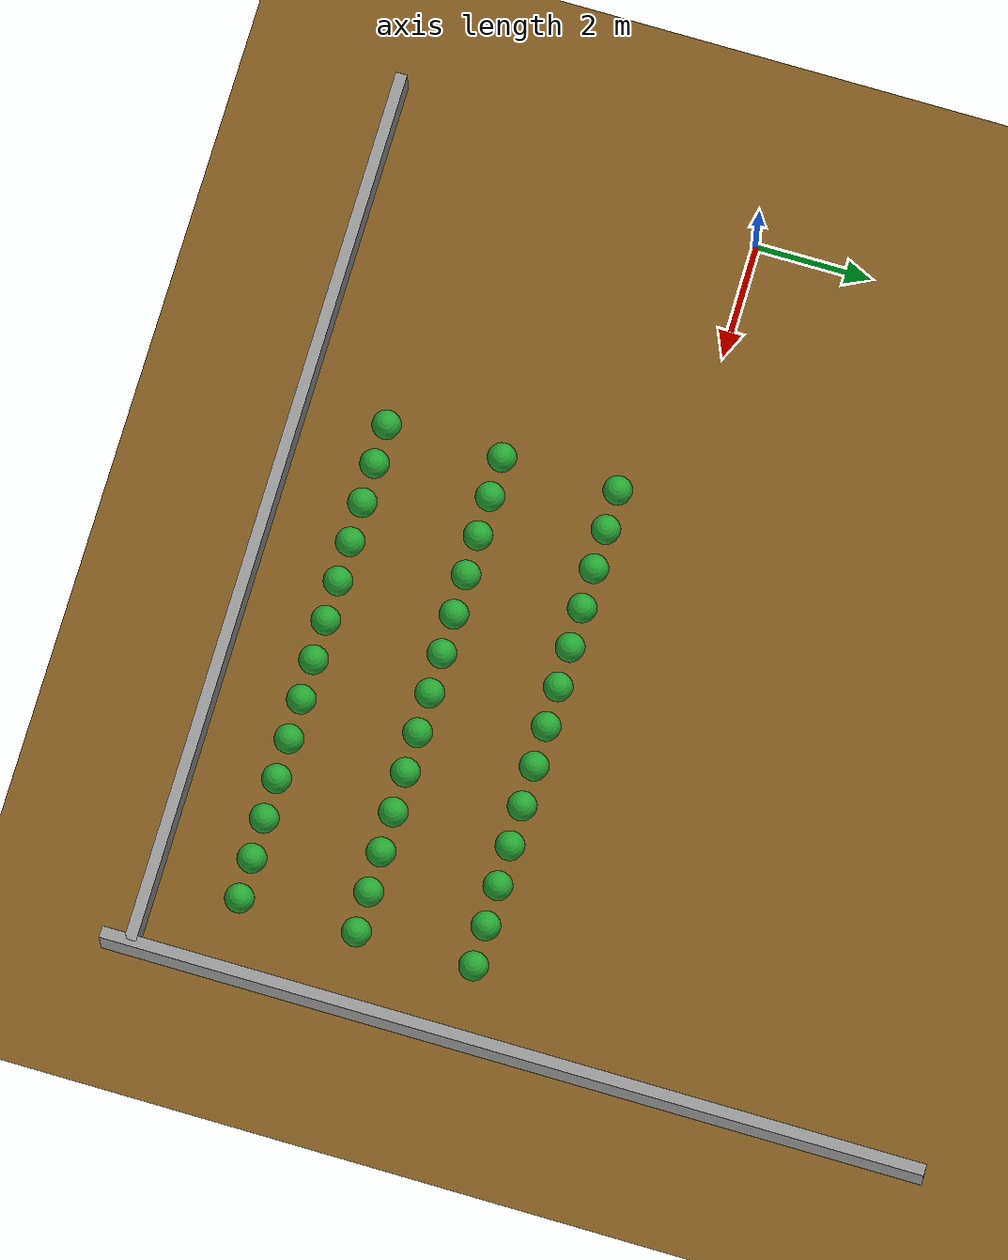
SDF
<sdf version="1.7">
 <world name="crop_field">
  <model name="ground_plane">
   <static>1</static>
   <link name="link">
    <collision name="collision">
     <geometry><plane><normal>0 0 1</normal><size>100 100</size></plane></geometry>
     <surface><friction><ode><mu>100</mu><mu2>50</mu2></ode></friction></surface>
    </collision>
    <visual name="visual">
     <cast_shadows>0</cast_shadows>
     <geometry><plane><normal>0 0 1</normal><size>100 100</size></plane></geometry>
     <material><ambient>0.45 0.30 0.10 1</ambient><diffuse>0.50 0.35 0.12 1</diffuse></material>
    </visual>
   </link>
  </model>
  <model name="row1_plant_07">
   <static>1</static>
   <link name="link">
    <collision name="c">
     <geometry><cylinder><radius>0.05</radius><length>0.8</length></cylinder></geometry>
    </collision>
    <visual name="stem">
     <pose>0 0 -0.125 0 0 0</pose>
     <geometry><cylinder><radius>0.03</radius><length>0.55</length></cylinder></geometry>
     <material>
      <script><uri>file://media/materials/scripts/gazebo.material</uri><name>Gazebo/Green</name></script>
     </material>
    </visual>
    <visual name="canopy">
     <pose>0 0 0.275 0 0 0</pose>
     <geometry><sphere><radius>0.25</radius></sphere></geometry>
     <material>
      <script><uri>file://media/materials/scripts/gazebo.material</uri><name>Gazebo/Green</name></script>
     </material>
    </visual>
   </link>
   <pose>4.9 -5.0 0.4 0 0 0</pose>
  </model>
  <model name="row1_plant_08">
   <static>1</static>
   <link name="link">
    <collision name="c">
     <geometry><cylinder><radius>0.05</radius><length>0.8</length></cylinder></geometry>
    </collision>
    <visual name="stem">
     <pose>0 0 -0.125 0 0 0</pose>
     <geometry><cylinder><radius>0.03</radius><length>0.55</length></cylinder></geometry>
     <material>
      <script><uri>file://media/materials/scripts/gazebo.material</uri><name>Gazebo/Green</name></script>
     </material>
    </visual>
    <visual name="canopy">
     <pose>0 0 0.275 0 0 0</pose>
     <geometry><sphere><radius>0.25</radius></sphere></geometry>
     <material>
      <script><uri>file://media/materials/scripts/gazebo.material</uri><name>Gazebo/Green</name></script>
     </material>
    </visual>
   </link>
   <pose>5.6 -5.0 0.4 0 0 0</pose>
  </model>
  <model name="row1_plant_09">
   <static>1</static>
   <link name="link">
    <collision name="c">
     <geometry><cylinder><radius>0.05</radius><length>0.8</length></cylinder></geometry>
    </collision>
    <visual name="stem">
     <pose>0 0 -0.125 0 0 0</pose>
     <geometry><cylinder><radius>0.03</radius><length>0.55</length></cylinder></geometry>
     <material>
      <script><uri>file://media/materials/scripts/gazebo.material</uri><name>Gazebo/Green</name></script>
     </material>
    </visual>
    <visual name="canopy">
     <pose>0 0 0.275 0 0 0</pose>
     <geometry><sphere><radius>0.25</radius></sphere></geometry>
     <material>
      <script><uri>file://media/materials/scripts/gazebo.material</uri><name>Gazebo/Green</name></script>
     </material>
    </visual>
   </link>
   <pose>6.3 -5.0 0.4 0 0 0</pose>
  </model>
  <model name="row1_plant_10">
   <static>1</static>
   <link name="link">
    <collision name="c">
     <geometry><cylinder><radius>0.05</radius><length>0.8</length></cylinder></geometry>
    </collision>
    <visual name="stem">
     <pose>0 0 -0.125 0 0 0</pose>
     <geometry><cylinder><radius>0.03</radius><length>0.55</length></cylinder></geometry>
     <material>
      <script><uri>file://media/materials/scripts/gazebo.material</uri><name>Gazebo/Green</name></script>
     </material>
    </visual>
    <visual name="canopy">
     <pose>0 0 0.275 0 0 0</pose>
     <geometry><sphere><radius>0.25</radius></sphere></geometry>
     <material>
      <script><uri>file://media/materials/scripts/gazebo.material</uri><name>Gazebo/Green</name></script>
     </material>
    </visual>
   </link>
   <pose>7.0 -5.0 0.4 0 0 0</pose>
  </model>
  <model name="row1_plant_11">
   <static>1</static>
   <link name="link">
    <collision name="c">
     <geometry><cylinder><radius>0.05</radius><length>0.8</length></cylinder></geometry>
    </collision>
    <visual name="stem">
     <pose>0 0 -0.125 0 0 0</pose>
     <geometry><cylinder><radius>0.03</radius><length>0.55</length></cylinder></geometry>
     <material>
      <script><uri>file://media/materials/scripts/gazebo.material</uri><name>Gazebo/Green</name></script>
     </material>
    </visual>
    <visual name="canopy">
     <pose>0 0 0.275 0 0 0</pose>
     <geometry><sphere><radius>0.25</radius></sphere></geometry>
     <material>
      <script><uri>file://media/materials/scripts/gazebo.material</uri><name>Gazebo/Green</name></script>
     </material>
    </visual>
   </link>
   <pose>7.7 -5.0 0.4 0 0 0</pose>
  </model>
  <model name="row1_plant_12">
   <static>1</static>
   <link name="link">
    <collision name="c">
     <geometry><cylinder><radius>0.05</radius><length>0.8</length></cylinder></geometry>
    </collision>
    <visual name="stem">
     <pose>0 0 -0.125 0 0 0</pose>
     <geometry><cylinder><radius>0.03</radius><length>0.55</length></cylinder></geometry>
     <material>
      <script><uri>file://media/materials/scripts/gazebo.material</uri><name>Gazebo/Green</name></script>
     </material>
    </visual>
    <visual name="canopy">
     <pose>0 0 0.275 0 0 0</pose>
     <geometry><sphere><radius>0.25</radius></sphere></geometry>
     <material>
      <script><uri>file://media/materials/scripts/gazebo.material</uri><name>Gazebo/Green</name></script>
     </material>
    </visual>
   </link>
   <pose>8.4 -5.0 0.4 0 0 0</pose>
  </model>
  <model name="row1_plant_13">
   <static>1</static>
   <link name="link">
    <collision name="c">
     <geometry><cylinder><radius>0.05</radius><length>0.8</length></cylinder></geometry>
    </collision>
    <visual name="stem">
     <pose>0 0 -0.125 0 0 0</pose>
     <geometry><cylinder><radius>0.03</radius><length>0.55</length></cylinder></geometry>
     <material>
      <script><uri>file://media/materials/scripts/gazebo.material</uri><name>Gazebo/Green</name></script>
     </material>
    </visual>
    <visual name="canopy">
     <pose>0 0 0.275 0 0 0</pose>
     <geometry><sphere><radius>0.25</radius></sphere></geometry>
     <material>
      <script><uri>file://media/materials/scripts/gazebo.material</uri><name>Gazebo/Green</name></script>
     </material>
    </visual>
   </link>
   <pose>9.1 -5.0 0.4 0 0 0</pose>
  </model>
  <model name="row1_plant_14">
   <static>1</static>
   <link name="link">
    <collision name="c">
     <geometry><cylinder><radius>0.05</radius><length>0.8</length></cylinder></geometry>
    </collision>
    <visual name="stem">
     <pose>0 0 -0.125 0 0 0</pose>
     <geometry><cylinder><radius>0.03</radius><length>0.55</length></cylinder></geometry>
     <material>
      <script><uri>file://media/materials/scripts/gazebo.material</uri><name>Gazebo/Green</name></script>
     </material>
    </visual>
    <visual name="canopy">
     <pose>0 0 0.275 0 0 0</pose>
     <geometry><sphere><radius>0.25</radius></sphere></geometry>
     <material>
      <script><uri>file://media/materials/scripts/gazebo.material</uri><name>Gazebo/Green</name></script>
     </material>
    </visual>
   </link>
   <pose>9.8 -5.0 0.4 0 0 0</pose>
  </model>
  <model name="row1_plant_15">
   <static>1</static>
   <link name="link">
    <collision name="c">
     <geometry><cylinder><radius>0.05</radius><length>0.8</length></cylinder></geometry>
    </collision>
    <visual name="stem">
     <pose>0 0 -0.125 0 0 0</pose>
     <geometry><cylinder><radius>0.03</radius><length>0.55</length></cylinder></geometry>
     <material>
      <script><uri>file://media/materials/scripts/gazebo.material</uri><name>Gazebo/Green</name></script>
     </material>
    </visual>
    <visual name="canopy">
     <pose>0 0 0.275 0 0 0</pose>
     <geometry><sphere><radius>0.25</radius></sphere></geometry>
     <material>
      <script><uri>file://media/materials/scripts/gazebo.material</uri><name>Gazebo/Green</name></script>
     </material>
    </visual>
   </link>
   <pose>10.5 -5.0 0.4 0 0 0</pose>
  </model>
  <model name="row1_plant_16">
   <static>1</static>
   <link name="link">
    <collision name="c">
     <geometry><cylinder><radius>0.05</radius><length>0.8</length></cylinder></geometry>
    </collision>
    <visual name="stem">
     <pose>0 0 -0.125 0 0 0</pose>
     <geometry><cylinder><radius>0.03</radius><length>0.55</length></cylinder></geometry>
     <material>
      <script><uri>file://media/materials/scripts/gazebo.material</uri><name>Gazebo/Green</name></script>
     </material>
    </visual>
    <visual name="canopy">
     <pose>0 0 0.275 0 0 0</pose>
     <geometry><sphere><radius>0.25</radius></sphere></geometry>
     <material>
      <script><uri>file://media/materials/scripts/gazebo.material</uri><name>Gazebo/Green</name></script>
     </material>
    </visual>
   </link>
   <pose>11.2 -5.0 0.4 0 0 0</pose>
  </model>
  <model name="row1_plant_17">
   <static>1</static>
   <link name="link">
    <collision name="c">
     <geometry><cylinder><radius>0.05</radius><length>0.8</length></cylinder></geometry>
    </collision>
    <visual name="stem">
     <pose>0 0 -0.125 0 0 0</pose>
     <geometry><cylinder><radius>0.03</radius><length>0.55</length></cylinder></geometry>
     <material>
      <script><uri>file://media/materials/scripts/gazebo.material</uri><name>Gazebo/Green</name></script>
     </material>
    </visual>
    <visual name="canopy">
     <pose>0 0 0.275 0 0 0</pose>
     <geometry><sphere><radius>0.25</radius></sphere></geometry>
     <material>
      <script><uri>file://media/materials/scripts/gazebo.material</uri><name>Gazebo/Green</name></script>
     </material>
    </visual>
   </link>
   <pose>11.9 -5.0 0.4 0 0 0</pose>
  </model>
  <model name="row1_plant_18">
   <static>1</static>
   <link name="link">
    <collision name="c">
     <geometry><cylinder><radius>0.05</radius><length>0.8</length></cylinder></geometry>
    </collision>
    <visual name="stem">
     <pose>0 0 -0.125 0 0 0</pose>
     <geometry><cylinder><radius>0.03</radius><length>0.55</length></cylinder></geometry>
     <material>
      <script><uri>file://media/materials/scripts/gazebo.material</uri><name>Gazebo/Green</name></script>
     </material>
    </visual>
    <visual name="canopy">
     <pose>0 0 0.275 0 0 0</pose>
     <geometry><sphere><radius>0.25</radius></sphere></geometry>
     <material>
      <script><uri>file://media/materials/scripts/gazebo.material</uri><name>Gazebo/Green</name></script>
     </material>
    </visual>
   </link>
   <pose>12.6 -5.0 0.4 0 0 0</pose>
  </model>
  <model name="row1_plant_19">
   <static>1</static>
   <link name="link">
    <collision name="c">
     <geometry><cylinder><radius>0.05</radius><length>0.8</length></cylinder></geometry>
    </collision>
    <visual name="stem">
     <pose>0 0 -0.125 0 0 0</pose>
     <geometry><cylinder><radius>0.03</radius><length>0.55</length></cylinder></geometry>
     <material>
      <script><uri>file://media/materials/scripts/gazebo.material</uri><name>Gazebo/Green</name></script>
     </material>
    </visual>
    <visual name="canopy">
     <pose>0 0 0.275 0 0 0</pose>
     <geometry><sphere><radius>0.25</radius></sphere></geometry>
     <material>
      <script><uri>file://media/materials/scripts/gazebo.material</uri><name>Gazebo/Green</name></script>
     </material>
    </visual>
   </link>
   <pose>13.3 -5.0 0.4 0 0 0</pose>
  </model>
  <model name="row2_plant_07">
   <static>1</static>
   <link name="link">
    <collision name="c">
     <geometry><cylinder><radius>0.05</radius><length>0.8</length></cylinder></geometry>
    </collision>
    <visual name="stem">
     <pose>0 0 -0.125 0 0 0</pose>
     <geometry><cylinder><radius>0.03</radius><length>0.55</length></cylinder></geometry>
     <material>
      <script><uri>file://media/materials/scripts/gazebo.material</uri><name>Gazebo/Green</name></script>
     </material>
    </visual>
    <visual name="canopy">
     <pose>0 0 0.275 0 0 0</pose>
     <geometry><sphere><radius>0.25</radius></sphere></geometry>
     <material>
      <script><uri>file://media/materials/scripts/gazebo.material</uri><name>Gazebo/Green</name></script>
     </material>
    </visual>
   </link>
   <pose>4.9 -3.0 0.4 0 0 0</pose>
  </model>
  <model name="row2_plant_08">
   <static>1</static>
   <link name="link">
    <collision name="c">
     <geometry><cylinder><radius>0.05</radius><length>0.8</length></cylinder></geometry>
    </collision>
    <visual name="stem">
     <pose>0 0 -0.125 0 0 0</pose>
     <geometry><cylinder><radius>0.03</radius><length>0.55</length></cylinder></geometry>
     <material>
      <script><uri>file://media/materials/scripts/gazebo.material</uri><name>Gazebo/Green</name></script>
     </material>
    </visual>
    <visual name="canopy">
     <pose>0 0 0.275 0 0 0</pose>
     <geometry><sphere><radius>0.25</radius></sphere></geometry>
     <material>
      <script><uri>file://media/materials/scripts/gazebo.material</uri><name>Gazebo/Green</name></script>
     </material>
    </visual>
   </link>
   <pose>5.6 -3.0 0.4 0 0 0</pose>
  </model>
  <model name="row2_plant_09">
   <static>1</static>
   <link name="link">
    <collision name="c">
     <geometry><cylinder><radius>0.05</radius><length>0.8</length></cylinder></geometry>
    </collision>
    <visual name="stem">
     <pose>0 0 -0.125 0 0 0</pose>
     <geometry><cylinder><radius>0.03</radius><length>0.55</length></cylinder></geometry>
     <material>
      <script><uri>file://media/materials/scripts/gazebo.material</uri><name>Gazebo/Green</name></script>
     </material>
    </visual>
    <visual name="canopy">
     <pose>0 0 0.275 0 0 0</pose>
     <geometry><sphere><radius>0.25</radius></sphere></geometry>
     <material>
      <script><uri>file://media/materials/scripts/gazebo.material</uri><name>Gazebo/Green</name></script>
     </material>
    </visual>
   </link>
   <pose>6.3 -3.0 0.4 0 0 0</pose>
  </model>
  <model name="row2_plant_10">
   <static>1</static>
   <link name="link">
    <collision name="c">
     <geometry><cylinder><radius>0.05</radius><length>0.8</length></cylinder></geometry>
    </collision>
    <visual name="stem">
     <pose>0 0 -0.125 0 0 0</pose>
     <geometry><cylinder><radius>0.03</radius><length>0.55</length></cylinder></geometry>
     <material>
      <script><uri>file://media/materials/scripts/gazebo.material</uri><name>Gazebo/Green</name></script>
     </material>
    </visual>
    <visual name="canopy">
     <pose>0 0 0.275 0 0 0</pose>
     <geometry><sphere><radius>0.25</radius></sphere></geometry>
     <material>
      <script><uri>file://media/materials/scripts/gazebo.material</uri><name>Gazebo/Green</name></script>
     </material>
    </visual>
   </link>
   <pose>7.0 -3.0 0.4 0 0 0</pose>
  </model>
  <model name="row2_plant_11">
   <static>1</static>
   <link name="link">
    <collision name="c">
     <geometry><cylinder><radius>0.05</radius><length>0.8</length></cylinder></geometry>
    </collision>
    <visual name="stem">
     <pose>0 0 -0.125 0 0 0</pose>
     <geometry><cylinder><radius>0.03</radius><length>0.55</length></cylinder></geometry>
     <material>
      <script><uri>file://media/materials/scripts/gazebo.material</uri><name>Gazebo/Green</name></script>
     </material>
    </visual>
    <visual name="canopy">
     <pose>0 0 0.275 0 0 0</pose>
     <geometry><sphere><radius>0.25</radius></sphere></geometry>
     <material>
      <script><uri>file://media/materials/scripts/gazebo.material</uri><name>Gazebo/Green</name></script>
     </material>
    </visual>
   </link>
   <pose>7.7 -3.0 0.4 0 0 0</pose>
  </model>
  <model name="row2_plant_12">
   <static>1</static>
   <link name="link">
    <collision name="c">
     <geometry><cylinder><radius>0.05</radius><length>0.8</length></cylinder></geometry>
    </collision>
    <visual name="stem">
     <pose>0 0 -0.125 0 0 0</pose>
     <geometry><cylinder><radius>0.03</radius><length>0.55</length></cylinder></geometry>
     <material>
      <script><uri>file://media/materials/scripts/gazebo.material</uri><name>Gazebo/Green</name></script>
     </material>
    </visual>
    <visual name="canopy">
     <pose>0 0 0.275 0 0 0</pose>
     <geometry><sphere><radius>0.25</radius></sphere></geometry>
     <material>
      <script><uri>file://media/materials/scripts/gazebo.material</uri><name>Gazebo/Green</name></script>
     </material>
    </visual>
   </link>
   <pose>8.4 -3.0 0.4 0 0 0</pose>
  </model>
  <model name="row2_plant_13">
   <static>1</static>
   <link name="link">
    <collision name="c">
     <geometry><cylinder><radius>0.05</radius><length>0.8</length></cylinder></geometry>
    </collision>
    <visual name="stem">
     <pose>0 0 -0.125 0 0 0</pose>
     <geometry><cylinder><radius>0.03</radius><length>0.55</length></cylinder></geometry>
     <material>
      <script><uri>file://media/materials/scripts/gazebo.material</uri><name>Gazebo/Green</name></script>
     </material>
    </visual>
    <visual name="canopy">
     <pose>0 0 0.275 0 0 0</pose>
     <geometry><sphere><radius>0.25</radius></sphere></geometry>
     <material>
      <script><uri>file://media/materials/scripts/gazebo.material</uri><name>Gazebo/Green</name></script>
     </material>
    </visual>
   </link>
   <pose>9.1 -3.0 0.4 0 0 0</pose>
  </model>
  <model name="row2_plant_14">
   <static>1</static>
   <link name="link">
    <collision name="c">
     <geometry><cylinder><radius>0.05</radius><length>0.8</length></cylinder></geometry>
    </collision>
    <visual name="stem">
     <pose>0 0 -0.125 0 0 0</pose>
     <geometry><cylinder><radius>0.03</radius><length>0.55</length></cylinder></geometry>
     <material>
      <script><uri>file://media/materials/scripts/gazebo.material</uri><name>Gazebo/Green</name></script>
     </material>
    </visual>
    <visual name="canopy">
     <pose>0 0 0.275 0 0 0</pose>
     <geometry><sphere><radius>0.25</radius></sphere></geometry>
     <material>
      <script><uri>file://media/materials/scripts/gazebo.material</uri><name>Gazebo/Green</name></script>
     </material>
    </visual>
   </link>
   <pose>9.8 -3.0 0.4 0 0 0</pose>
  </model>
  <model name="row2_plant_15">
   <static>1</static>
   <link name="link">
    <collision name="c">
     <geometry><cylinder><radius>0.05</radius><length>0.8</length></cylinder></geometry>
    </collision>
    <visual name="stem">
     <pose>0 0 -0.125 0 0 0</pose>
     <geometry><cylinder><radius>0.03</radius><length>0.55</length></cylinder></geometry>
     <material>
      <script><uri>file://media/materials/scripts/gazebo.material</uri><name>Gazebo/Green</name></script>
     </material>
    </visual>
    <visual name="canopy">
     <pose>0 0 0.275 0 0 0</pose>
     <geometry><sphere><radius>0.25</radius></sphere></geometry>
     <material>
      <script><uri>file://media/materials/scripts/gazebo.material</uri><name>Gazebo/Green</name></script>
     </material>
    </visual>
   </link>
   <pose>10.5 -3.0 0.4 0 0 0</pose>
  </model>
  <model name="row2_plant_16">
   <static>1</static>
   <link name="link">
    <collision name="c">
     <geometry><cylinder><radius>0.05</radius><length>0.8</length></cylinder></geometry>
    </collision>
    <visual name="stem">
     <pose>0 0 -0.125 0 0 0</pose>
     <geometry><cylinder><radius>0.03</radius><length>0.55</length></cylinder></geometry>
     <material>
      <script><uri>file://media/materials/scripts/gazebo.material</uri><name>Gazebo/Green</name></script>
     </material>
    </visual>
    <visual name="canopy">
     <pose>0 0 0.275 0 0 0</pose>
     <geometry><sphere><radius>0.25</radius></sphere></geometry>
     <material>
      <script><uri>file://media/materials/scripts/gazebo.material</uri><name>Gazebo/Green</name></script>
     </material>
    </visual>
   </link>
   <pose>11.2 -3.0 0.4 0 0 0</pose>
  </model>
  <model name="row2_plant_17">
   <static>1</static>
   <link name="link">
    <collision name="c">
     <geometry><cylinder><radius>0.05</radius><length>0.8</length></cylinder></geometry>
    </collision>
    <visual name="stem">
     <pose>0 0 -0.125 0 0 0</pose>
     <geometry><cylinder><radius>0.03</radius><length>0.55</length></cylinder></geometry>
     <material>
      <script><uri>file://media/materials/scripts/gazebo.material</uri><name>Gazebo/Green</name></script>
     </material>
    </visual>
    <visual name="canopy">
     <pose>0 0 0.275 0 0 0</pose>
     <geometry><sphere><radius>0.25</radius></sphere></geometry>
     <material>
      <script><uri>file://media/materials/scripts/gazebo.material</uri><name>Gazebo/Green</name></script>
     </material>
    </visual>
   </link>
   <pose>11.9 -3.0 0.4 0 0 0</pose>
  </model>
  <model name="row2_plant_18">
   <static>1</static>
   <link name="link">
    <collision name="c">
     <geometry><cylinder><radius>0.05</radius><length>0.8</length></cylinder></geometry>
    </collision>
    <visual name="stem">
     <pose>0 0 -0.125 0 0 0</pose>
     <geometry><cylinder><radius>0.03</radius><length>0.55</length></cylinder></geometry>
     <material>
      <script><uri>file://media/materials/scripts/gazebo.material</uri><name>Gazebo/Green</name></script>
     </material>
    </visual>
    <visual name="canopy">
     <pose>0 0 0.275 0 0 0</pose>
     <geometry><sphere><radius>0.25</radius></sphere></geometry>
     <material>
      <script><uri>file://media/materials/scripts/gazebo.material</uri><name>Gazebo/Green</name></script>
     </material>
    </visual>
   </link>
   <pose>12.6 -3.0 0.4 0 0 0</pose>
  </model>
  <model name="row2_plant_19">
   <static>1</static>
   <link name="link">
    <collision name="c">
     <geometry><cylinder><radius>0.05</radius><length>0.8</length></cylinder></geometry>
    </collision>
    <visual name="stem">
     <pose>0 0 -0.125 0 0 0</pose>
     <geometry><cylinder><radius>0.03</radius><length>0.55</length></cylinder></geometry>
     <material>
      <script><uri>file://media/materials/scripts/gazebo.material</uri><name>Gazebo/Green</name></script>
     </material>
    </visual>
    <visual name="canopy">
     <pose>0 0 0.275 0 0 0</pose>
     <geometry><sphere><radius>0.25</radius></sphere></geometry>
     <material>
      <script><uri>file://media/materials/scripts/gazebo.material</uri><name>Gazebo/Green</name></script>
     </material>
    </visual>
   </link>
   <pose>13.3 -3.0 0.4 0 0 0</pose>
  </model>
  <model name="row3_plant_07">
   <static>1</static>
   <link name="link">
    <collision name="c">
     <geometry><cylinder><radius>0.05</radius><length>0.8</length></cylinder></geometry>
    </collision>
    <visual name="stem">
     <pose>0 0 -0.125 0 0 0</pose>
     <geometry><cylinder><radius>0.03</radius><length>0.55</length></cylinder></geometry>
     <material>
      <script><uri>file://media/materials/scripts/gazebo.material</uri><name>Gazebo/Green</name></script>
     </material>
    </visual>
    <visual name="canopy">
     <pose>0 0 0.275 0 0 0</pose>
     <geometry><sphere><radius>0.25</radius></sphere></geometry>
     <material>
      <script><uri>file://media/materials/scripts/gazebo.material</uri><name>Gazebo/Green</name></script>
     </material>
    </visual>
   </link>
   <pose>4.9 -1.0 0.4 0 0 0</pose>
  </model>
  <model name="row3_plant_08">
   <static>1</static>
   <link name="link">
    <collision name="c">
     <geometry><cylinder><radius>0.05</radius><length>0.8</length></cylinder></geometry>
    </collision>
    <visual name="stem">
     <pose>0 0 -0.125 0 0 0</pose>
     <geometry><cylinder><radius>0.03</radius><length>0.55</length></cylinder></geometry>
     <material>
      <script><uri>file://media/materials/scripts/gazebo.material</uri><name>Gazebo/Green</name></script>
     </material>
    </visual>
    <visual name="canopy">
     <pose>0 0 0.275 0 0 0</pose>
     <geometry><sphere><radius>0.25</radius></sphere></geometry>
     <material>
      <script><uri>file://media/materials/scripts/gazebo.material</uri><name>Gazebo/Green</name></script>
     </material>
    </visual>
   </link>
   <pose>5.6 -1.0 0.4 0 0 0</pose>
  </model>
  <model name="row3_plant_09">
   <static>1</static>
   <link name="link">
    <collision name="c">
     <geometry><cylinder><radius>0.05</radius><length>0.8</length></cylinder></geometry>
    </collision>
    <visual name="stem">
     <pose>0 0 -0.125 0 0 0</pose>
     <geometry><cylinder><radius>0.03</radius><length>0.55</length></cylinder></geometry>
     <material>
      <script><uri>file://media/materials/scripts/gazebo.material</uri><name>Gazebo/Green</name></script>
     </material>
    </visual>
    <visual name="canopy">
     <pose>0 0 0.275 0 0 0</pose>
     <geometry><sphere><radius>0.25</radius></sphere></geometry>
     <material>
      <script><uri>file://media/materials/scripts/gazebo.material</uri><name>Gazebo/Green</name></script>
     </material>
    </visual>
   </link>
   <pose>6.3 -1.0 0.4 0 0 0</pose>
  </model>
  <model name="row3_plant_10">
   <static>1</static>
   <link name="link">
    <collision name="c">
     <geometry><cylinder><radius>0.05</radius><length>0.8</length></cylinder></geometry>
    </collision>
    <visual name="stem">
     <pose>0 0 -0.125 0 0 0</pose>
     <geometry><cylinder><radius>0.03</radius><length>0.55</length></cylinder></geometry>
     <material>
      <script><uri>file://media/materials/scripts/gazebo.material</uri><name>Gazebo/Green</name></script>
     </material>
    </visual>
    <visual name="canopy">
     <pose>0 0 0.275 0 0 0</pose>
     <geometry><sphere><radius>0.25</radius></sphere></geometry>
     <material>
      <script><uri>file://media/materials/scripts/gazebo.material</uri><name>Gazebo/Green</name></script>
     </material>
    </visual>
   </link>
   <pose>7.0 -1.0 0.4 0 0 0</pose>
  </model>
  <model name="row3_plant_11">
   <static>1</static>
   <link name="link">
    <collision name="c">
     <geometry><cylinder><radius>0.05</radius><length>0.8</length></cylinder></geometry>
    </collision>
    <visual name="stem">
     <pose>0 0 -0.125 0 0 0</pose>
     <geometry><cylinder><radius>0.03</radius><length>0.55</length></cylinder></geometry>
     <material>
      <script><uri>file://media/materials/scripts/gazebo.material</uri><name>Gazebo/Green</name></script>
     </material>
    </visual>
    <visual name="canopy">
     <pose>0 0 0.275 0 0 0</pose>
     <geometry><sphere><radius>0.25</radius></sphere></geometry>
     <material>
      <script><uri>file://media/materials/scripts/gazebo.material</uri><name>Gazebo/Green</name></script>
     </material>
    </visual>
   </link>
   <pose>7.7 -1.0 0.4 0 0 0</pose>
  </model>
  <model name="row3_plant_12">
   <static>1</static>
   <link name="link">
    <collision name="c">
     <geometry><cylinder><radius>0.05</radius><length>0.8</length></cylinder></geometry>
    </collision>
    <visual name="stem">
     <pose>0 0 -0.125 0 0 0</pose>
     <geometry><cylinder><radius>0.03</radius><length>0.55</length></cylinder></geometry>
     <material>
      <script><uri>file://media/materials/scripts/gazebo.material</uri><name>Gazebo/Green</name></script>
     </material>
    </visual>
    <visual name="canopy">
     <pose>0 0 0.275 0 0 0</pose>
     <geometry><sphere><radius>0.25</radius></sphere></geometry>
     <material>
      <script><uri>file://media/materials/scripts/gazebo.material</uri><name>Gazebo/Green</name></script>
     </material>
    </visual>
   </link>
   <pose>8.4 -1.0 0.4 0 0 0</pose>
  </model>
  <model name="row3_plant_13">
   <static>1</static>
   <link name="link">
    <collision name="c">
     <geometry><cylinder><radius>0.05</radius><length>0.8</length></cylinder></geometry>
    </collision>
    <visual name="stem">
     <pose>0 0 -0.125 0 0 0</pose>
     <geometry><cylinder><radius>0.03</radius><length>0.55</length></cylinder></geometry>
     <material>
      <script><uri>file://media/materials/scripts/gazebo.material</uri><name>Gazebo/Green</name></script>
     </material>
    </visual>
    <visual name="canopy">
     <pose>0 0 0.275 0 0 0</pose>
     <geometry><sphere><radius>0.25</radius></sphere></geometry>
     <material>
      <script><uri>file://media/materials/scripts/gazebo.material</uri><name>Gazebo/Green</name></script>
     </material>
    </visual>
   </link>
   <pose>9.1 -1.0 0.4 0 0 0</pose>
  </model>
  <model name="row3_plant_14">
   <static>1</static>
   <link name="link">
    <collision name="c">
     <geometry><cylinder><radius>0.05</radius><length>0.8</length></cylinder></geometry>
    </collision>
    <visual name="stem">
     <pose>0 0 -0.125 0 0 0</pose>
     <geometry><cylinder><radius>0.03</radius><length>0.55</length></cylinder></geometry>
     <material>
      <script><uri>file://media/materials/scripts/gazebo.material</uri><name>Gazebo/Green</name></script>
     </material>
    </visual>
    <visual name="canopy">
     <pose>0 0 0.275 0 0 0</pose>
     <geometry><sphere><radius>0.25</radius></sphere></geometry>
     <material>
      <script><uri>file://media/materials/scripts/gazebo.material</uri><name>Gazebo/Green</name></script>
     </material>
    </visual>
   </link>
   <pose>9.8 -1.0 0.4 0 0 0</pose>
  </model>
  <model name="row3_plant_15">
   <static>1</static>
   <link name="link">
    <collision name="c">
     <geometry><cylinder><radius>0.05</radius><length>0.8</length></cylinder></geometry>
    </collision>
    <visual name="stem">
     <pose>0 0 -0.125 0 0 0</pose>
     <geometry><cylinder><radius>0.03</radius><length>0.55</length></cylinder></geometry>
     <material>
      <script><uri>file://media/materials/scripts/gazebo.material</uri><name>Gazebo/Green</name></script>
     </material>
    </visual>
    <visual name="canopy">
     <pose>0 0 0.275 0 0 0</pose>
     <geometry><sphere><radius>0.25</radius></sphere></geometry>
     <material>
      <script><uri>file://media/materials/scripts/gazebo.material</uri><name>Gazebo/Green</name></script>
     </material>
    </visual>
   </link>
   <pose>10.5 -1.0 0.4 0 0 0</pose>
  </model>
  <model name="row3_plant_16">
   <static>1</static>
   <link name="link">
    <collision name="c">
     <geometry><cylinder><radius>0.05</radius><length>0.8</length></cylinder></geometry>
    </collision>
    <visual name="stem">
     <pose>0 0 -0.125 0 0 0</pose>
     <geometry><cylinder><radius>0.03</radius><length>0.55</length></cylinder></geometry>
     <material>
      <script><uri>file://media/materials/scripts/gazebo.material</uri><name>Gazebo/Green</name></script>
     </material>
    </visual>
    <visual name="canopy">
     <pose>0 0 0.275 0 0 0</pose>
     <geometry><sphere><radius>0.25</radius></sphere></geometry>
     <material>
      <script><uri>file://media/materials/scripts/gazebo.material</uri><name>Gazebo/Green</name></script>
     </material>
    </visual>
   </link>
   <pose>11.2 -1.0 0.4 0 0 0</pose>
  </model>
  <model name="row3_plant_17">
   <static>1</static>
   <link name="link">
    <collision name="c">
     <geometry><cylinder><radius>0.05</radius><length>0.8</length></cylinder></geometry>
    </collision>
    <visual name="stem">
     <pose>0 0 -0.125 0 0 0</pose>
     <geometry><cylinder><radius>0.03</radius><length>0.55</length></cylinder></geometry>
     <material>
      <script><uri>file://media/materials/scripts/gazebo.material</uri><name>Gazebo/Green</name></script>
     </material>
    </visual>
    <visual name="canopy">
     <pose>0 0 0.275 0 0 0</pose>
     <geometry><sphere><radius>0.25</radius></sphere></geometry>
     <material>
      <script><uri>file://media/materials/scripts/gazebo.material</uri><name>Gazebo/Green</name></script>
     </material>
    </visual>
   </link>
   <pose>11.9 -1.0 0.4 0 0 0</pose>
  </model>
  <model name="row3_plant_18">
   <static>1</static>
   <link name="link">
    <collision name="c">
     <geometry><cylinder><radius>0.05</radius><length>0.8</length></cylinder></geometry>
    </collision>
    <visual name="stem">
     <pose>0 0 -0.125 0 0 0</pose>
     <geometry><cylinder><radius>0.03</radius><length>0.55</length></cylinder></geometry>
     <material>
      <script><uri>file://media/materials/scripts/gazebo.material</uri><name>Gazebo/Green</name></script>
     </material>
    </visual>
    <visual name="canopy">
     <pose>0 0 0.275 0 0 0</pose>
     <geometry><sphere><radius>0.25</radius></sphere></geometry>
     <material>
      <script><uri>file://media/materials/scripts/gazebo.material</uri><name>Gazebo/Green</name></script>
     </material>
    </visual>
   </link>
   <pose>12.6 -1.0 0.4 0 0 0</pose>
  </model>
  <model name="row3_plant_19">
   <static>1</static>
   <link name="link">
    <collision name="c">
     <geometry><cylinder><radius>0.05</radius><length>0.8</length></cylinder></geometry>
    </collision>
    <visual name="stem">
     <pose>0 0 -0.125 0 0 0</pose>
     <geometry><cylinder><radius>0.03</radius><length>0.55</length></cylinder></geometry>
     <material>
      <script><uri>file://media/materials/scripts/gazebo.material</uri><name>Gazebo/Green</name></script>
     </material>
    </visual>
    <visual name="canopy">
     <pose>0 0 0.275 0 0 0</pose>
     <geometry><sphere><radius>0.25</radius></sphere></geometry>
     <material>
      <script><uri>file://media/materials/scripts/gazebo.material</uri><name>Gazebo/Green</name></script>
     </material>
    </visual>
   </link>
   <pose>13.3 -1.0 0.4 0 0 0</pose>
  </model>
  <model name="wall_side_left">
   <static>1</static>
   <link name="link">
    <collision name="c"><geometry><box><size>15.5 0.2 0.8</size></box></geometry></collision>
    <visual name="v">
     <geometry><box><size>15.5 0.2 0.8</size></box></geometry>
     <material>
      <script><uri>file://media/materials/scripts/gazebo.material</uri><name>Gazebo/Grey</name></script>
     </material>
    </visual>
   </link>
   <pose>6.75 -6.5 0.4 0 0 0</pose>
  </model>
  <model name="wall_end">
   <static>1</static>
   <link name="link">
    <collision name="c"><geometry><box><size>0.2 14.0 0.8</size></box></geometry></collision>
    <visual name="v">
     <geometry><box><size>0.2 14.0 0.8</size></box></geometry>
     <material>
      <script><uri>file://media/materials/scripts/gazebo.material</uri><name>Gazebo/Grey</name></script>
     </material>
    </visual>
   </link>
   <pose>14.5 0.0 0.4 0 0 0</pose>
  </model>
 </world>
</sdf>
